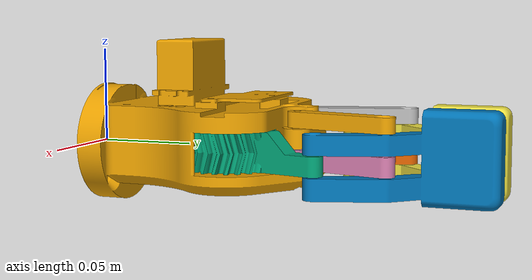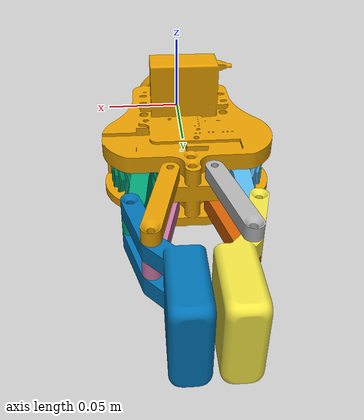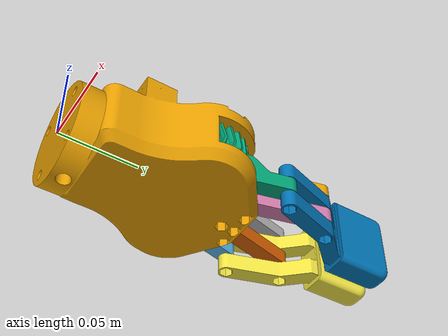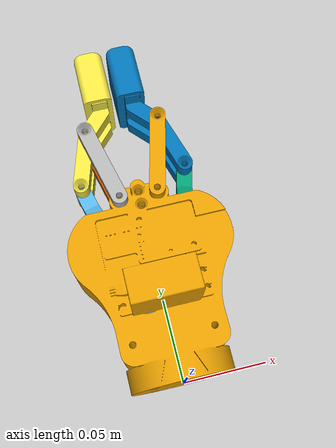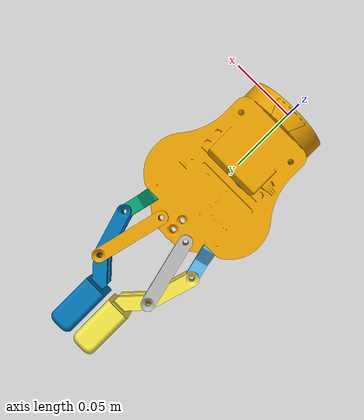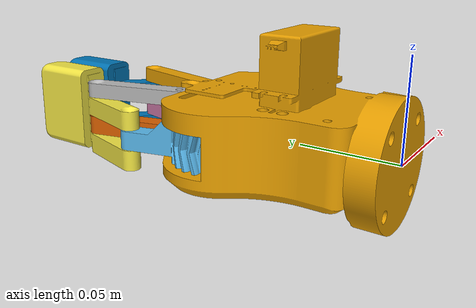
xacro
<robot xmlns:xacro="http://www.ros.org/wiki/xacro" name="colman-gripper">
  <xacro:arg name="visual_mesh_ext" default="obj"/>
  <xacro:arg name="include_gazebo_plugin" default="true"/>
  <xacro:include filename="colman-gripper.xacro"/>
  <xacro:colman-gripper prefix="" visual_mesh_ext="$(arg visual_mesh_ext)" include_gazebo_plugin="$(arg include_gazebo_plugin)"/>
</robot>

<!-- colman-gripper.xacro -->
<robot xmlns:xacro="http://www.ros.org/wiki/xacro" name="colman-gripper">
  <xacro:macro name="colman-gripper" params="prefix:='' visual_mesh_ext:='obj' include_gazebo_plugin:='true'">
    <xacro:property name="joint_limits_file" value="${xacro.load_yaml('$(find gripper_description)/config/joint_limits.yaml')}"/>
    <xacro:property name="joint_limits" value="${joint_limits_file['joint_limits']}"/>
    <xacro:property name="inertials_file" value="${xacro.load_yaml('$(find gripper_description)/config/inertials.yaml')}"/>
    <xacro:property name="inertials" value="${inertials_file['inertials']}"/>

    <link name="${prefix}gripper_base">
      <inertial>
        <mass value="${inertials['base']['mass']}"/>
        <origin xyz="${inertials['base']['origin']['xyz']}" rpy="${inertials['base']['origin']['rpy']}"/>
        <inertia ixx="${inertials['base']['inertia']['ixx']}" iyy="${inertials['base']['inertia']['iyy']}" izz="${inertials['base']['inertia']['izz']}" ixy="${inertials['base']['inertia']['ixy']}" ixz="${inertials['base']['inertia']['ixz']}" iyz="${inertials['base']['inertia']['iyz']}"/>
      </inertial>
      <visual>
        <origin xyz="0 0 0" rpy="0 0 0"/>
        <geometry>
          <mesh filename="package://gripper_description/meshes/visual/base.${visual_mesh_ext}" scale="0.001 0.001 0.001"/>
        </geometry>
      </visual>
      <collision>
        <origin xyz="0 0 0" rpy="0 0 0"/>
        <geometry>
          <mesh filename="package://gripper_description/meshes/collision/base_0.stl" scale="0.001 0.001 0.001"/>
        </geometry>
      </collision>
    </link>
    <link name="${prefix}left_gear">
      <inertial>
        <mass value="${inertials['left_gear']['mass']}"/>
        <origin xyz="${inertials['left_gear']['origin']['xyz']}" rpy="${inertials['left_gear']['origin']['rpy']}"/>
        <inertia ixx="${inertials['left_gear']['inertia']['ixx']}" iyy="${inertials['left_gear']['inertia']['iyy']}" izz="${inertials['left_gear']['inertia']['izz']}" ixy="${inertials['left_gear']['inertia']['ixy']}" ixz="${inertials['left_gear']['inertia']['ixz']}" iyz="${inertials['left_gear']['inertia']['iyz']}"/>
      </inertial>
      <visual>
        <origin xyz="0 0 0" rpy="0 0 0"/>
        <geometry>
          <mesh filename="package://gripper_description/meshes/visual/left_gear.${visual_mesh_ext}" scale="0.001 0.001 0.001"/>
        </geometry>
      </visual>
      <collision>
        <origin xyz="0 0 0" rpy="0 0 0"/>
        <geometry>
          <mesh filename="package://gripper_description/meshes/collision/left_gear_0.stl" scale="0.001 0.001 0.001"/>
        </geometry>
      </collision>
    </link>
    <link name="${prefix}right_gear">
      <inertial>
        <mass value="${inertials['right_gear']['mass']}"/>
        <origin xyz="${inertials['right_gear']['origin']['xyz']}" rpy="${inertials['right_gear']['origin']['rpy']}"/>
        <inertia ixx="${inertials['right_gear']['inertia']['ixx']}" iyy="${inertials['right_gear']['inertia']['iyy']}" izz="${inertials['right_gear']['inertia']['izz']}" ixy="${inertials['right_gear']['inertia']['ixy']}" ixz="${inertials['right_gear']['inertia']['ixz']}" iyz="${inertials['right_gear']['inertia']['iyz']}"/>
      </inertial>
      <visual>
        <origin xyz="0 0 0" rpy="0 0 0"/>
        <geometry>
          <mesh filename="package://gripper_description/meshes/visual/right_gear.${visual_mesh_ext}" scale="0.001 0.001 0.001"/>
        </geometry>
      </visual>
      <collision>
        <origin xyz="0 0 0" rpy="0 0 0"/>
        <geometry>
          <mesh filename="package://gripper_description/meshes/collision/right_gear_0.stl" scale="0.001 0.001 0.001"/>
        </geometry>
      </collision>
    </link>
    <link name="${prefix}left_arm_bottom">
      <inertial>
        <mass value="${inertials['left_arm_bottom']['mass']}"/>
        <origin xyz="${inertials['left_arm_bottom']['origin']['xyz']}" rpy="${inertials['left_arm_bottom']['origin']['rpy']}"/>
        <inertia ixx="${inertials['left_arm_bottom']['inertia']['ixx']}" iyy="${inertials['left_arm_bottom']['inertia']['iyy']}" izz="${inertials['left_arm_bottom']['inertia']['izz']}" ixy="${inertials['left_arm_bottom']['inertia']['ixy']}" ixz="${inertials['left_arm_bottom']['inertia']['ixz']}" iyz="${inertials['left_arm_bottom']['inertia']['iyz']}"/>
      </inertial>
      <visual>
        <origin xyz="0 0 0" rpy="0 0 0"/>
        <geometry>
          <mesh filename="package://gripper_description/meshes/visual/left_arm_bottom.${visual_mesh_ext}" scale="0.001 0.001 0.001"/>
        </geometry>
      </visual>
      <collision>
        <origin xyz="0 0 0" rpy="0 0 0"/>
        <geometry>
          <mesh filename="package://gripper_description/meshes/collision/left_arm_bottom_0.stl" scale="0.001 0.001 0.001"/>
        </geometry>
      </collision>
    </link>
    <link name="${prefix}right_arm_bottom">
      <inertial>
        <mass value="${inertials['right_arm_bottom']['mass']}"/>
        <origin xyz="${inertials['right_arm_bottom']['origin']['xyz']}" rpy="${inertials['right_arm_bottom']['origin']['rpy']}"/>
        <inertia ixx="${inertials['right_arm_bottom']['inertia']['ixx']}" iyy="${inertials['right_arm_bottom']['inertia']['iyy']}" izz="${inertials['right_arm_bottom']['inertia']['izz']}" ixy="${inertials['right_arm_bottom']['inertia']['ixy']}" ixz="${inertials['right_arm_bottom']['inertia']['ixz']}" iyz="${inertials['right_arm_bottom']['inertia']['iyz']}"/>
      </inertial>
      <visual>
        <origin xyz="0 0 0" rpy="0 0 0"/>
        <geometry>
          <mesh filename="package://gripper_description/meshes/visual/right_arm_bottom.${visual_mesh_ext}" scale="0.001 0.001 0.001"/>
        </geometry>
      </visual>
      <collision>
        <origin xyz="0 0 0" rpy="0 0 0"/>
        <geometry>
          <mesh filename="package://gripper_description/meshes/collision/right_arm_bottom_0.stl" scale="0.001 0.001 0.001"/>
        </geometry>
      </collision>
    </link>
    <link name="${prefix}bottom_stick_left">
      <inertial>
        <mass value="${inertials['bottom_stick_left']['mass']}"/>
        <origin xyz="${inertials['bottom_stick_left']['origin']['xyz']}" rpy="${inertials['bottom_stick_left']['origin']['rpy']}"/>
        <inertia ixx="${inertials['bottom_stick_left']['inertia']['ixx']}" iyy="${inertials['bottom_stick_left']['inertia']['iyy']}" izz="${inertials['bottom_stick_left']['inertia']['izz']}" ixy="${inertials['bottom_stick_left']['inertia']['ixy']}" ixz="${inertials['bottom_stick_left']['inertia']['ixz']}" iyz="${inertials['bottom_stick_left']['inertia']['iyz']}"/>
      </inertial>
      <visual>
        <origin xyz="0 0 0" rpy="0 0 0"/>
        <geometry>
          <mesh filename="package://gripper_description/meshes/visual/bottom_stick_left.${visual_mesh_ext}" scale="0.001 0.001 0.001"/>
        </geometry>
      </visual>
      <collision>
        <origin xyz="0 0 0" rpy="0 0 0"/>
        <geometry>
          <mesh filename="package://gripper_description/meshes/collision/bottom_stick_left_0.stl" scale="0.001 0.001 0.001"/>
        </geometry>
      </collision>
    </link>
    <link name="${prefix}bottom_stick_right">
      <inertial>
        <mass value="${inertials['bottom_stick_right']['mass']}"/>
        <origin xyz="${inertials['bottom_stick_right']['origin']['xyz']}" rpy="${inertials['bottom_stick_right']['origin']['rpy']}"/>
        <inertia ixx="${inertials['bottom_stick_right']['inertia']['ixx']}" iyy="${inertials['bottom_stick_right']['inertia']['iyy']}" izz="${inertials['bottom_stick_right']['inertia']['izz']}" ixy="${inertials['bottom_stick_right']['inertia']['ixy']}" ixz="${inertials['bottom_stick_right']['inertia']['ixz']}" iyz="${inertials['bottom_stick_right']['inertia']['iyz']}"/>
      </inertial>
      <visual>
        <origin xyz="0 0 0" rpy="0 0 0"/>
        <geometry>
          <mesh filename="package://gripper_description/meshes/visual/bottom_stick_right.${visual_mesh_ext}" scale="0.001 0.001 0.001"/>
        </geometry>
      </visual>
      <collision>
        <origin xyz="0 0 0" rpy="0 0 0"/>
        <geometry>
          <mesh filename="package://gripper_description/meshes/collision/bottom_stick_right_0.stl" scale="0.001 0.001 0.001"/>
        </geometry>
      </collision>
    </link>
    <link name="${prefix}top_stick_left">
      <inertial>
        <mass value="${inertials['top_stick_left']['mass']}"/>
        <origin xyz="${inertials['top_stick_left']['origin']['xyz']}" rpy="${inertials['top_stick_left']['origin']['rpy']}"/>
        <inertia ixx="${inertials['top_stick_left']['inertia']['ixx']}" iyy="${inertials['top_stick_left']['inertia']['iyy']}" izz="${inertials['top_stick_left']['inertia']['izz']}" ixy="${inertials['top_stick_left']['inertia']['ixy']}" ixz="${inertials['top_stick_left']['inertia']['ixz']}" iyz="${inertials['top_stick_left']['inertia']['iyz']}"/>
      </inertial>
      <visual>
        <origin xyz="0 0 0" rpy="0 0 0"/>
        <geometry>
          <mesh filename="package://gripper_description/meshes/visual/top_stick_left.${visual_mesh_ext}" scale="0.001 0.001 0.001"/>
        </geometry>
      </visual>
      <collision>
        <origin xyz="0 0 0" rpy="0 0 0"/>
        <geometry>
          <mesh filename="package://gripper_description/meshes/collision/top_stick_left_0.stl" scale="0.001 0.001 0.001"/>
        </geometry>
      </collision>
    </link>
    <link name="${prefix}top_stick_right">
      <inertial>
        <mass value="${inertials['top_stick_right']['mass']}"/>
        <origin xyz="${inertials['top_stick_right']['origin']['xyz']}" rpy="${inertials['top_stick_right']['origin']['rpy']}"/>
        <inertia ixx="${inertials['top_stick_right']['inertia']['ixx']}" iyy="${inertials['top_stick_right']['inertia']['iyy']}" izz="${inertials['top_stick_right']['inertia']['izz']}" ixy="${inertials['top_stick_right']['inertia']['ixy']}" ixz="${inertials['top_stick_right']['inertia']['ixz']}" iyz="${inertials['top_stick_right']['inertia']['iyz']}"/>
      </inertial>
      <visual>
        <origin xyz="0 0 0" rpy="0 0 0"/>
        <geometry>
          <mesh filename="package://gripper_description/meshes/visual/top_stick_right.${visual_mesh_ext}" scale="0.001 0.001 0.001"/>
        </geometry>
      </visual>
      <collision>
        <origin xyz="0 0 0" rpy="0 0 0"/>
        <geometry>
          <mesh filename="package://gripper_description/meshes/collision/top_stick_right_0.stl" scale="0.001 0.001 0.001"/>
        </geometry>
      </collision>
    </link>
    <link name="${prefix}drive_gear">
      <inertial>
        <mass value="${inertials['drive_gear']['mass']}"/>
        <origin xyz="${inertials['drive_gear']['origin']['xyz']}" rpy="${inertials['drive_gear']['origin']['rpy']}"/>
        <inertia ixx="${inertials['drive_gear']['inertia']['ixx']}" iyy="${inertials['drive_gear']['inertia']['iyy']}" izz="${inertials['drive_gear']['inertia']['izz']}" ixy="${inertials['drive_gear']['inertia']['ixy']}" ixz="${inertials['drive_gear']['inertia']['ixz']}" iyz="${inertials['drive_gear']['inertia']['iyz']}"/>
      </inertial>
      <visual>
        <origin xyz="0 0 0" rpy="0 0 0"/>
        <geometry>
          <mesh filename="package://gripper_description/meshes/visual/drive_gear.${visual_mesh_ext}" scale="0.001 0.001 0.001"/>
        </geometry>
      </visual>
      <collision>
        <origin xyz="0 0 0" rpy="0 0 0"/>
        <geometry>
          <mesh filename="package://gripper_description/meshes/collision/drive_gear_0.stl" scale="0.001 0.001 0.001"/>
        </geometry>
      </collision>
    </link>
    <joint name="${prefix}servotodrivegear" type="revolute">
      <origin xyz="-0.01005 0.05210915 0.011233870000000003" rpy="3.141592653589793 0.0 -1.5707963267948966"/>
      <parent link="${prefix}gripper_base"/>
      <child link="${prefix}drive_gear"/>
      <axis xyz="0.0 0.0 -1.0"/>
      <limit lower="${joint_limits['servotodrivegear']['lower']}" upper="${joint_limits['servotodrivegear']['upper']}" effort="${joint_limits['servotodrivegear']['effort']}" velocity="${joint_limits['servotodrivegear']['velocity']}"/>
      <dynamics damping="${joint_limits['servotodrivegear']['damping']}" friction="${joint_limits['servotodrivegear']['friction']}"/>
    </joint>
    <joint name="${prefix}rightgear" type="revolute">
      <origin xyz="0.022 0.08285000000000001 -0.008116129999999997" rpy="0.0 0.0 1.5707963267948966"/>
      <parent link="${prefix}gripper_base"/>
      <child link="${prefix}right_gear"/>
      <axis xyz="0.0 0.0 -1.0"/>
      <limit lower="${joint_limits['rightgear']['lower']}" upper="${joint_limits['rightgear']['upper']}" effort="${joint_limits['rightgear']['effort']}" velocity="${joint_limits['rightgear']['velocity']}"/>
      <dynamics damping="${joint_limits['rightgear']['damping']}" friction="${joint_limits['rightgear']['friction']}"/>
      <mimic joint="${prefix}servotodrivegear" multiplier="-0.5" offset="0"/>
    </joint>
    <joint name="${prefix}leftgear" type="revolute">
      <origin xyz="-0.022 0.08285000000000001 -0.008116129999999997" rpy="0.0 0.0 1.5707963267948966"/>
      <parent link="${prefix}gripper_base"/>
      <child link="${prefix}left_gear"/>
      <axis xyz="0.0 0.0 -1.0"/>
      <limit lower="${joint_limits['leftgear']['lower']}" upper="${joint_limits['leftgear']['upper']}" effort="${joint_limits['leftgear']['effort']}" velocity="${joint_limits['leftgear']['velocity']}"/>
      <dynamics damping="${joint_limits['leftgear']['damping']}" friction="${joint_limits['leftgear']['friction']}"/>
      <mimic joint="${prefix}servotodrivegear" multiplier="0.5" offset="0"/>
    </joint>
    <joint name="${prefix}leftarm" type="revolute">
      <origin xyz="0.04858003499999998 0.011831323499999997 -1.734723475976807e-18" rpy="0.0 0.0 -1.3319040916513103"/>
      <parent link="${prefix}left_gear"/>
      <child link="${prefix}left_arm_bottom"/>
      <axis xyz="0.0 0.0 1.0"/>
      <limit lower="${joint_limits['leftarm']['lower']}" upper="${joint_limits['leftarm']['upper']}" effort="${joint_limits['leftarm']['effort']}" velocity="${joint_limits['leftarm']['velocity']}"/>
      <dynamics damping="${joint_limits['leftarm']['damping']}" friction="${joint_limits['leftarm']['friction']}"/>
      <mimic joint="${prefix}leftgear" multiplier="1" offset="0"/>
    </joint>
    <joint name="${prefix}rightarm" type="revolute">
      <origin xyz="0.04858003499999998 -0.011831323499999997 -1.734723475976807e-18" rpy="0.0 0.0 1.3319040916513103"/>
      <parent link="${prefix}right_gear"/>
      <child link="${prefix}right_arm_bottom"/>
      <axis xyz="0.0 0.0 1.0"/>
      <limit lower="${joint_limits['rightarm']['lower']}" upper="${joint_limits['rightarm']['upper']}" effort="${joint_limits['rightarm']['effort']}" velocity="${joint_limits['rightarm']['velocity']}"/>
      <dynamics damping="${joint_limits['rightarm']['damping']}" friction="${joint_limits['rightarm']['friction']}"/>
      <mimic joint="${prefix}rightgear" multiplier="1" offset="0"/>
    </joint>
    <joint name="${prefix}topleftstick" type="revolute">
      <origin xyz="-0.012 0.11585 0.01288387" rpy="3.141592653589793 0.0 1.5707963267948966"/>
      <parent link="${prefix}gripper_base"/>
      <child link="${prefix}top_stick_left"/>
      <axis xyz="0.0 0.0 1.0"/>
      <limit lower="${joint_limits['topleftstick']['lower']}" upper="${joint_limits['topleftstick']['upper']}" effort="${joint_limits['topleftstick']['effort']}" velocity="${joint_limits['topleftstick']['velocity']}"/>
      <dynamics damping="${joint_limits['topleftstick']['damping']}" friction="${joint_limits['topleftstick']['friction']}"/>
      <mimic joint="${prefix}leftgear" multiplier="1" offset="0"/>
    </joint>
    <joint name="${prefix}bottomleftstick" type="revolute">
      <origin xyz="-0.012 0.11585 0.0023838699999999997" rpy="0.0 0.0 1.5707963267948966"/>
      <parent link="${prefix}gripper_base"/>
      <child link="${prefix}bottom_stick_left"/>
      <axis xyz="0.0 0.0 1.0"/>
      <limit lower="${joint_limits['bottomleftstick']['lower']}" upper="${joint_limits['bottomleftstick']['upper']}" effort="${joint_limits['bottomleftstick']['effort']}" velocity="${joint_limits['bottomleftstick']['velocity']}"/>
      <dynamics damping="${joint_limits['bottomleftstick']['damping']}" friction="${joint_limits['bottomleftstick']['friction']}"/>
      <mimic joint="${prefix}leftgear" multiplier="-1" offset="0"/>
    </joint>
    <joint name="${prefix}toprightstick" type="revolute">
      <origin xyz="0.012 0.11585 0.01288387" rpy="3.141592653589793 0.0 1.5707963267948966"/>
      <parent link="${prefix}gripper_base"/>
      <child link="${prefix}top_stick_right"/>
      <axis xyz="0.0 0.0 1.0"/>
      <limit lower="${joint_limits['toprightstick']['lower']}" upper="${joint_limits['toprightstick']['upper']}" effort="${joint_limits['toprightstick']['effort']}" velocity="${joint_limits['toprightstick']['velocity']}"/>
      <dynamics damping="${joint_limits['toprightstick']['damping']}" friction="${joint_limits['toprightstick']['friction']}"/>
      <mimic joint="${prefix}rightgear" multiplier="1" offset="0"/>
    </joint>
    <joint name="${prefix}bottomrightstick" type="revolute">
      <origin xyz="0.012 0.11585 0.0023838699999999997" rpy="0.0 0.0 1.5707963267948966"/>
      <parent link="${prefix}gripper_base"/>
      <child link="${prefix}bottom_stick_right"/>
      <axis xyz="0.0 0.0 1.0"/>
      <limit lower="${joint_limits['bottomrightstick']['lower']}" upper="${joint_limits['bottomrightstick']['upper']}" effort="${joint_limits['bottomrightstick']['effort']}" velocity="${joint_limits['bottomrightstick']['velocity']}"/>
      <dynamics damping="${joint_limits['bottomrightstick']['damping']}" friction="${joint_limits['bottomrightstick']['friction']}"/>
      <mimic joint="${prefix}rightgear" multiplier="-1" offset="0"/>
    </joint>
    <!-- ros2_control -->
    <ros2_control name="${prefix}colman_gripper_system" type="system">
      <hardware>
        <plugin>gz_ros2_control/GazeboSimSystem</plugin>
        <param name="state_following_offset">0.0</param>
      </hardware>

      <!-- Drive gear control -->
      <joint name="${prefix}servotodrivegear">
        <command_interface name="position">
          <param name="min">${joint_limits['servotodrivegear']['lower']}</param>
          <param name="max">${joint_limits['servotodrivegear']['upper']}</param>
        </command_interface>
        <state_interface name="position">
          <param name="initial_value">${joint_limits['servotodrivegear']['lower']}</param>
        </state_interface>
        <state_interface name="velocity"/>
      </joint>

      <!-- Mimic joints -->
      <joint name="${prefix}leftgear">
        <state_interface name="position"/>
        <state_interface name="velocity"/>
      </joint>
      <joint name="${prefix}rightgear">
        <state_interface name="position"/>
        <state_interface name="velocity"/>
      </joint>
      <joint name="${prefix}leftarm">
        <state_interface name="position"/>
        <state_interface name="velocity"/>
      </joint>
      <joint name="${prefix}rightarm">
        <state_interface name="position"/>
        <state_interface name="velocity"/>
      </joint>
      <joint name="${prefix}topleftstick">
        <state_interface name="position"/>
        <state_interface name="velocity"/>
      </joint>
      <joint name="${prefix}bottomleftstick">
        <state_interface name="position"/>
        <state_interface name="velocity"/>
      </joint>
      <joint name="${prefix}toprightstick">
        <state_interface name="position"/>
        <state_interface name="velocity"/>
      </joint>
      <joint name="${prefix}bottomrightstick">
        <state_interface name="position"/>
        <state_interface name="velocity"/>
      </joint>
    </ros2_control>

    <!-- Gazebo ros2_control plugin -->
    <xacro:if value="${include_gazebo_plugin}">
      <gazebo>
        <plugin filename="libgz_ros2_control-system.so"
          name="gz_ros2_control::GazeboSimROS2ControlPlugin">
          <parameters>$(find gripper_description)/config/gripper_controllers.yaml</parameters>
        </plugin>
      </gazebo>
    </xacro:if>
  </xacro:macro>
</robot>
